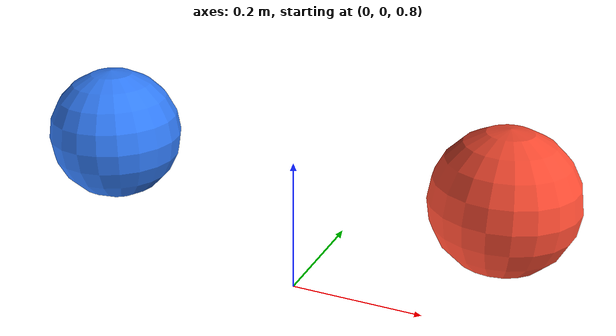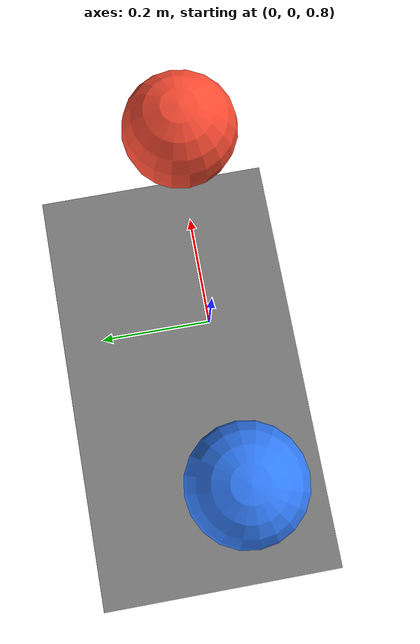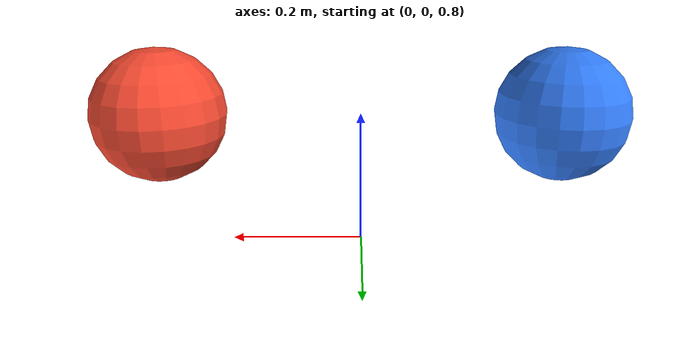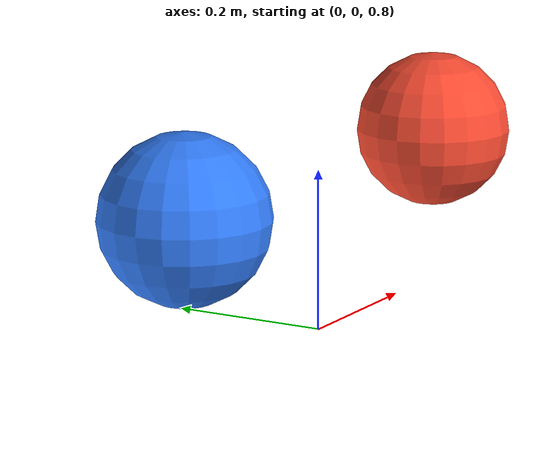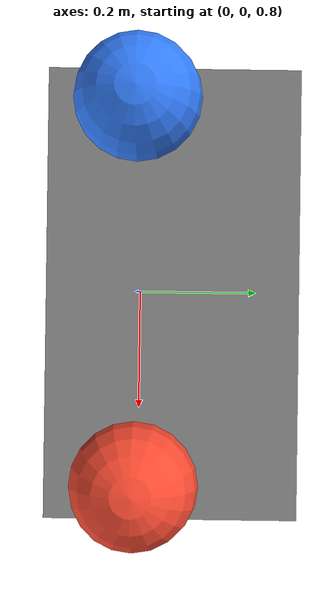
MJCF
<mujoco model="contact_softness">
  <option timestep="0.001"/>
  <worldbody>
    <geom name="floor" type="plane" size="2 2 .1" contype="0" conaffinity="0"/>
    <body name="soft_body" pos="-.3 0 1">
      <freejoint/><geom name="soft_ball" type="sphere" size=".1" mass="1" contype="0" conaffinity="0" rgba=".2 .5 1 1"/>
    </body>
    <body name="hard_body" pos=".3 0 1">
      <freejoint/><geom name="hard_ball" type="sphere" size=".1" mass="1" contype="0" conaffinity="0" rgba="1 .3 .2 1"/>
    </body>
  </worldbody>
  <contact>
    <pair geom1="floor" geom2="soft_ball" solref=".08 1"/>
    <pair geom1="floor" geom2="hard_ball" solref=".008 1"/>
  </contact>
</mujoco>
